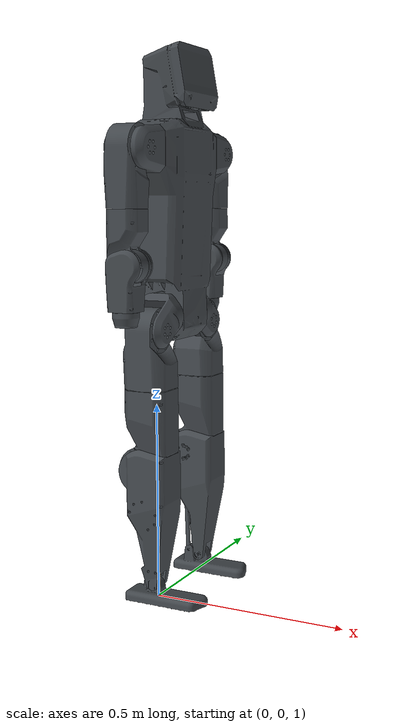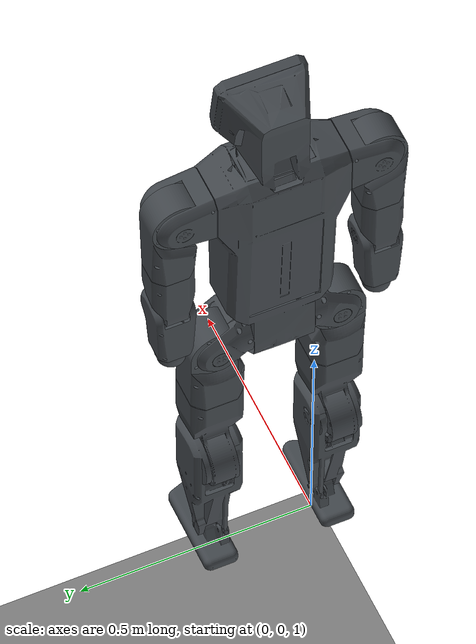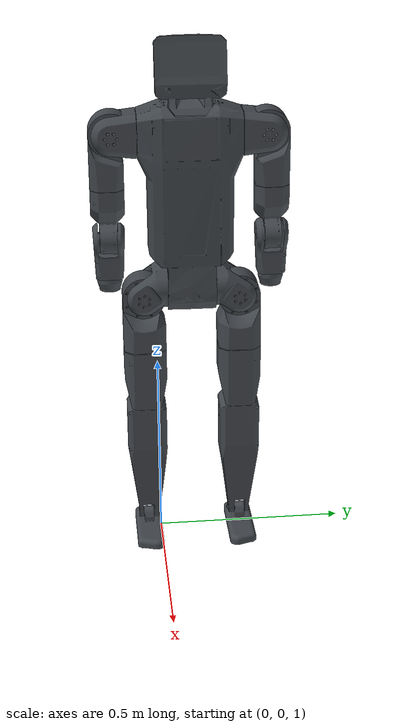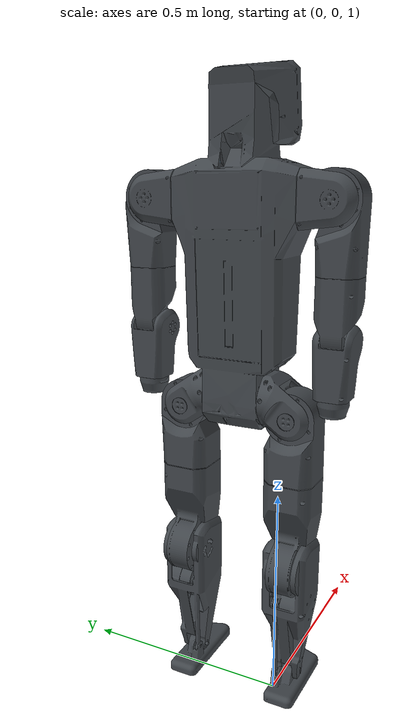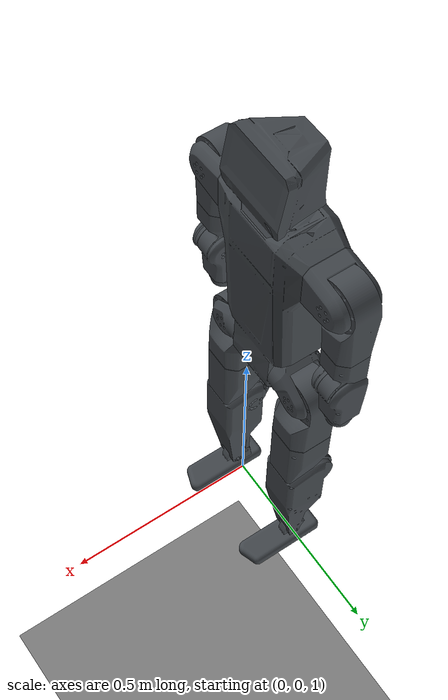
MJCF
<mujoco model="kbotv2p0_nohands">
  <default>
    <default class="robot">
      <default class="motor_00">
        <joint armature="0.001" frictionloss="0.1" actuatorfrcrange="-14.0 14.0" />
        <position ctrlrange="-14.0 14.0" kp="20.0" dampratio="1.0" />
      </default>
      <default class="motor_02">
        <joint armature="0.0042" frictionloss="0.1" actuatorfrcrange="-17.0 17.0" />
        <position ctrlrange="-17.0 17.0" kp="40.0" dampratio="1.0" />
      </default>
      <default class="motor_03">
        <joint armature="0.02" frictionloss="0.2" actuatorfrcrange="-60.0 60.0" />
        <position ctrlrange="-60.0 60.0" kp="200.0" dampratio="1.0" />
      </default>
      <default class="motor_04">
        <joint armature="0.04" frictionloss="0.2" actuatorfrcrange="-120.0 120.0" />
        <position ctrlrange="-120.0 120.0" kp="150.0" dampratio="1.0" />
      </default>
      <default class="visual">
        <geom material="visualgeom" contype="0" conaffinity="0" group="2" />
      </default>
      <default class="collision">
        <geom condim="6" contype="0" conaffinity="1" group="3" solref="0.005 1" friction="0.8 0.02 0.01" />
        <equality solimp="0.99 0.999 1e-05" solref="0.005 1" />
      </default>
    </default>
    <mesh maxhullvert="64" />
  </default>

  <compiler angle="radian" />

  <asset>
    <material name="floating_base_link_material" rgba="1 0 0 1" />
    <material name="Torso_Side_Right_material" rgba="0.262745 0.282353 0.301961 1" />
    <material name="imu_material" rgba="0.615686 0.811765 0.929412 1" />
    <material name="default_material" rgba="0.7 0.7 0.7 1" />
    <material name="floor_material" rgba="0.5 0.5 0.5 1" />
    <mesh name="Torso_Side_Right.collision.stl" file="meshes/Torso_Side_Right.collision.stl" />
    <mesh name="Torso_Side_Right.stl" file="meshes/Torso_Side_Right.stl" />
    <mesh name="KC_C_104R_PitchHardstopDriven.collision.stl" file="meshes/KC_C_104R_PitchHardstopDriven.collision.stl" />
    <mesh name="KC_C_104R_PitchHardstopDriven.stl" file="meshes/KC_C_104R_PitchHardstopDriven.stl" />
    <mesh name="RS03_3.collision.stl" file="meshes/RS03_3.collision.stl" />
    <mesh name="RS03_3.stl" file="meshes/RS03_3.stl" />
    <mesh name="KC_C_202R.collision.stl" file="meshes/KC_C_202R.collision.stl" />
    <mesh name="KC_C_202R.stl" file="meshes/KC_C_202R.stl" />
    <mesh name="KC_C_401R_R_UpForearmDrive.collision.stl" file="meshes/KC_C_401R_R_UpForearmDrive.collision.stl" />
    <mesh name="KC_C_401R_R_UpForearmDrive.stl" file="meshes/KC_C_401R_R_UpForearmDrive.stl" />
    <mesh name="KB_C_501X_Right_Bayonet_Adapter_Hard_Stop.collision.stl" file="meshes/KB_C_501X_Right_Bayonet_Adapter_Hard_Stop.collision.stl" />
    <mesh name="KB_C_501X_Right_Bayonet_Adapter_Hard_Stop.stl" file="meshes/KB_C_501X_Right_Bayonet_Adapter_Hard_Stop.stl" />
    <mesh name="imu.collision.stl" file="meshes/imu.collision.stl" />
    <mesh name="imu.stl" file="meshes/imu.stl" />
    <mesh name="KC_C_104L_PitchHardstopDriven.collision.stl" file="meshes/KC_C_104L_PitchHardstopDriven.collision.stl" />
    <mesh name="KC_C_104L_PitchHardstopDriven.stl" file="meshes/KC_C_104L_PitchHardstopDriven.stl" />
    <mesh name="RS03_6.collision.stl" file="meshes/RS03_6.collision.stl" />
    <mesh name="RS03_6.stl" file="meshes/RS03_6.stl" />
    <mesh name="KC_C_202L.collision.stl" file="meshes/KC_C_202L.collision.stl" />
    <mesh name="KC_C_202L.stl" file="meshes/KC_C_202L.stl" />
    <mesh name="KC_C_401L_L_UpForearmDrive.collision.stl" file="meshes/KC_C_401L_L_UpForearmDrive.collision.stl" />
    <mesh name="KC_C_401L_L_UpForearmDrive.stl" file="meshes/KC_C_401L_L_UpForearmDrive.stl" />
    <mesh name="KB_C_501X_Left_Bayonet_Adapter_Hard_Stop.collision.stl" file="meshes/KB_C_501X_Left_Bayonet_Adapter_Hard_Stop.collision.stl" />
    <mesh name="KB_C_501X_Left_Bayonet_Adapter_Hard_Stop.stl" file="meshes/KB_C_501X_Left_Bayonet_Adapter_Hard_Stop.stl" />
    <mesh name="KC_D_102R_R_Hip_Yoke_Drive.collision.stl" file="meshes/KC_D_102R_R_Hip_Yoke_Drive.collision.stl" />
    <mesh name="KC_D_102R_R_Hip_Yoke_Drive.stl" file="meshes/KC_D_102R_R_Hip_Yoke_Drive.stl" />
    <mesh name="RS03_4.collision.stl" file="meshes/RS03_4.collision.stl" />
    <mesh name="RS03_4.stl" file="meshes/RS03_4.stl" />
    <mesh name="KC_D_301R_R_Femur_Lower_Drive.collision.stl" file="meshes/KC_D_301R_R_Femur_Lower_Drive.collision.stl" />
    <mesh name="KC_D_301R_R_Femur_Lower_Drive.stl" file="meshes/KC_D_301R_R_Femur_Lower_Drive.stl" />
    <mesh name="KC_D_401R_R_Shin_Drive.collision.stl" file="meshes/KC_D_401R_R_Shin_Drive.collision.stl" />
    <mesh name="KC_D_401R_R_Shin_Drive.stl" file="meshes/KC_D_401R_R_Shin_Drive.stl" />
    <mesh name="KB_D_501R_R_LEG_FOOT.collision.stl" file="meshes/KB_D_501R_R_LEG_FOOT.collision.stl" />
    <mesh name="KB_D_501R_R_LEG_FOOT.stl" file="meshes/KB_D_501R_R_LEG_FOOT.stl" />
    <mesh name="KC_D_102L_L_Hip_Yoke_Drive.collision.stl" file="meshes/KC_D_102L_L_Hip_Yoke_Drive.collision.stl" />
    <mesh name="KC_D_102L_L_Hip_Yoke_Drive.stl" file="meshes/KC_D_102L_L_Hip_Yoke_Drive.stl" />
    <mesh name="RS03_5.collision.stl" file="meshes/RS03_5.collision.stl" />
    <mesh name="RS03_5.stl" file="meshes/RS03_5.stl" />
    <mesh name="KC_D_301L_L_Femur_Lower_Drive.collision.stl" file="meshes/KC_D_301L_L_Femur_Lower_Drive.collision.stl" />
    <mesh name="KC_D_301L_L_Femur_Lower_Drive.stl" file="meshes/KC_D_301L_L_Femur_Lower_Drive.stl" />
    <mesh name="KC_D_401L_L_Shin_Drive.collision.stl" file="meshes/KC_D_401L_L_Shin_Drive.collision.stl" />
    <mesh name="KC_D_401L_L_Shin_Drive.stl" file="meshes/KC_D_401L_L_Shin_Drive.stl" />
    <mesh name="KB_D_501L_L_LEG_FOOT.collision.stl" file="meshes/KB_D_501L_L_LEG_FOOT.collision.stl" />
    <mesh name="KB_D_501L_L_LEG_FOOT.stl" file="meshes/KB_D_501L_L_LEG_FOOT.stl" />
  </asset>

  <worldbody>
    <geom name="floor" type="plane" size="10 10 0.1" pos="0 0 0" rgba="0.5 0.5 0.5 1" material="floor_material" />

    <light name="overhead_light" pos="0 0 5" dir="0 0 -1" directional="true" diffuse="0.8 0.8 0.8" specular="0.2 0.2 0.2" />
    <light name="front_light" pos="2 2 2" dir="-0.5 -0.5 -0.7" directional="false" diffuse="0.5 0.5 0.5" specular="0.3 0.3 0.3" />
    <light name="back_light" pos="-2 -2 2" dir="0.5 0.5 -0.7" directional="false" diffuse="0.3 0.3 0.3" specular="0.1 0.1 0.1" />

    <body name="floating_base_link" pos="0.00000000 0.00000000 2.00947904" quat="1 0 0 0" childclass="robot">
      <geom name="floating_base_link_visual" pos="0 0 0" quat="0.7073882691671998 0.0 0.0 0.706825181105366" material="floating_base_link_material" type="sphere" size="0.01" class="visual" />
      <body name="Torso_Side_Right" pos="0 0 0" quat="0.7073882691671998 0.0 0.0 0.706825181105366">
        <inertial pos="0.093172 -0.000957 -0.063239" quat="1.0 0.0 0.0 0.0" mass="13.516427" diaginertia="0.486657 0.51314 0.059226" />
        <geom name="Torso_Side_Right_collision" pos="0 0 0" quat="1.0 0.0 0.0 0.0" type="mesh" mesh="Torso_Side_Right.collision.stl" class="collision" />
        <geom name="Torso_Side_Right_visual" pos="0 0 0" quat="1.0 0.0 0.0 0.0" material="Torso_Side_Right_material" type="mesh" mesh="Torso_Side_Right.stl" class="visual" />
        <body name="KC_C_104R_PitchHardstopDriven" pos="-0.028031 0.000007 0.126021" quat="0.5000001633974483 0.4999999999999733 0.49999983660255165 0.4999999999999733">
          <joint name="dof_right_shoulder_pitch_03" type="hinge" ref="0.0" class="motor_03" range="-2.617994 2.094395" axis="0 0 1" />
          <inertial pos="-0.004584 0.002745 -0.051222" quat="1.0 0.0 0.0 0.0" mass="0.584848" diaginertia="0.001182 0.001537 0.001416" />
          <geom name="KC_C_104R_PitchHardstopDriven_collision" pos="0 0 0" quat="1.0 0.0 0.0 0.0" type="mesh" mesh="KC_C_104R_PitchHardstopDriven.collision.stl" class="collision" />
          <geom name="KC_C_104R_PitchHardstopDriven_visual" pos="0 0 0" quat="1.0 0.0 0.0 0.0" material="Torso_Side_Right_material" type="mesh" mesh="KC_C_104R_PitchHardstopDriven.stl" class="visual" />
          <body name="RS03_3" pos="-0.024250 0 -0.080000" quat="-1.2247452309842457e-07 -0.7071068967259713 1.22474483074382e-07 -0.7071066656470838">
            <joint name="dof_right_shoulder_roll_03" type="hinge" ref="0.0" class="motor_03" range="-1.658063 0.383972" axis="0 0 -1" />
            <inertial pos="-0.004944 0.042532 0.027432" quat="1.0 0.0 0.0 0.0" mass="1.676509" diaginertia="0.006831 0.001755 0.007324" />
            <geom name="RS03_3_collision" pos="0 0 0" quat="1.0 0.0 0.0 0.0" type="mesh" mesh="RS03_3.collision.stl" class="collision" />
            <geom name="RS03_3_visual" pos="0 0 0" quat="1.0 0.0 0.0 0.0" material="Torso_Side_Right_material" type="mesh" mesh="RS03_3.stl" class="visual" />
            <body name="KC_C_202R" pos="-0.013000 0.142000 0.030250" quat="0.7071068967259818 0.7071066656470943 0.0 0.0">
              <joint name="dof_right_shoulder_yaw_02" type="hinge" ref="0.0" class="motor_02" range="-1.658063 1.658063" axis="0 0 1" />
              <inertial pos="0.003910 -0.004160 -0.101316" quat="1.0 0.0 0.0 0.0" mass="0.743508" diaginertia="0.00241 0.002208 0.000693" />
              <geom name="KC_C_202R_collision" pos="0 0 0" quat="1.0 0.0 0.0 0.0" type="mesh" mesh="KC_C_202R.collision.stl" class="collision" />
              <geom name="KC_C_202R_visual" pos="0 0 0" quat="1.0 0.0 0.0 0.0" material="Torso_Side_Right_material" type="mesh" mesh="KC_C_202R.stl" class="visual" />
              <body name="KC_C_401R_R_UpForearmDrive" pos="0.018500 -0.010000 -0.137000" quat="0.7071068967259818 0.0 0.7071066656470943 0.0">
                <joint name="dof_right_elbow_02" type="hinge" ref="0.0" class="motor_02" range="0 2.478368" axis="0 0 -1" />
                <inertial pos="0.061999 0.015867 -0.012446" quat="1.0 0.0 0.0 0.0" mass="0.585204" diaginertia="0.000522 0.001021 0.00102" />
                <geom name="KC_C_401R_R_UpForearmDrive_collision" pos="0 0 0" quat="1.0 0.0 0.0 0.0" type="mesh" mesh="KC_C_401R_R_UpForearmDrive.collision.stl" class="collision" />
                <geom name="KC_C_401R_R_UpForearmDrive_visual" pos="0 0 0" quat="1.0 0.0 0.0 0.0" material="Torso_Side_Right_material" type="mesh" mesh="KC_C_401R_R_UpForearmDrive.stl" class="visual" />
                <body name="KB_C_501X_Right_Bayonet_Adapter_Hard_Stop" pos="0.103000 0.017350 -0.018000" quat="0.7071068967259818 0.0 -0.7071066656470943 0.0">
                  <joint name="dof_right_wrist_00" type="hinge" ref="0.0" class="motor_00" range="-1.745329 1.745329" axis="0 0 1" />
                  <inertial pos="0.004187 0.000068 -0.019905" quat="1.0 0.0 0.0 0.0" mass="0.152198" diaginertia="6.1e-05 6.1e-05 8.4e-05" />
                  <geom name="KB_C_501X_Right_Bayonet_Adapter_Hard_Stop_collision" pos="0 0 0" quat="1.0 0.0 0.0 0.0" type="mesh" mesh="KB_C_501X_Right_Bayonet_Adapter_Hard_Stop.collision.stl" class="collision" />
                  <geom name="KB_C_501X_Right_Bayonet_Adapter_Hard_Stop_visual" pos="0 0 0" quat="1.0 0.0 0.0 0.0" material="Torso_Side_Right_material" type="mesh" mesh="KB_C_501X_Right_Bayonet_Adapter_Hard_Stop.stl" class="visual" />
                </body>
              </body>
            </body>
          </body>
        </body>
        <body name="imu" pos="0.121783 0.043292 0.231518" quat="0.7071067715114185 8.22589334037449e-07 0.7071067908607194 8.22589334037449e-07">
          <inertial pos="0.014737 -0.012000 0.003000" quat="1.0 0.0 0.0 0.0" mass="0.005700" diaginertia="1e-06 1e-06 2e-06" />
          <geom name="imu_collision" pos="0 0 0" quat="1.0 0.0 0.0 0.0" type="mesh" mesh="imu.collision.stl" class="collision" />
          <geom name="imu_visual" pos="0 0 0" quat="1.0 0.0 0.0 0.0" material="imu_material" type="mesh" mesh="imu.stl" class="visual" />
          <site name="imu_site" quat="1.0 0.0 0.0 0.0" pos="0.0 0.0 0.0" />
        </body>
        <body name="KC_C_104L_PitchHardstopDriven" pos="0.213969 0.000007 0.126021" quat="0.5000001633974483 -0.4999999999999733 -0.49999983660255165 0.4999999999999733">
          <joint name="dof_left_shoulder_pitch_03" type="hinge" ref="0.0" class="motor_03" range="-1.047198 3.490658" axis="0 0 1" />
          <inertial pos="-0.004595 -0.002745 -0.051222" quat="1.0 0.0 0.0 0.0" mass="0.584843" diaginertia="0.001182 0.001536 0.001415" />
          <geom name="KC_C_104L_PitchHardstopDriven_collision" pos="0 0 0" quat="1.0 0.0 0.0 0.0" type="mesh" mesh="KC_C_104L_PitchHardstopDriven.collision.stl" class="collision" />
          <geom name="KC_C_104L_PitchHardstopDriven_visual" pos="0 0 0" quat="1.0 0.0 0.0 0.0" material="Torso_Side_Right_material" type="mesh" mesh="KC_C_104L_PitchHardstopDriven.stl" class="visual" />
          <body name="RS03_6" pos="-0.024250 0 -0.080000" quat="-1.2247452309842457e-07 -0.7071068967259713 -1.22474483074382e-07 0.7071066656470838">
            <joint name="dof_left_shoulder_roll_03" type="hinge" ref="0.0" class="motor_03" range="-0.383972 1.658063" axis="0 0 1" />
            <inertial pos="0.004944 -0.042531 -0.027433" quat="1.0 0.0 0.0 0.0" mass="1.676479" diaginertia="0.00683 0.001755 0.007324" />
            <geom name="RS03_6_collision" pos="0 0 0" quat="1.0 0.0 0.0 0.0" type="mesh" mesh="RS03_6.collision.stl" class="collision" />
            <geom name="RS03_6_visual" pos="0 0 0" quat="1.0 0.0 0.0 0.0" material="Torso_Side_Right_material" type="mesh" mesh="RS03_6.stl" class="visual" />
            <body name="KC_C_202L" pos="0.013000 -0.142000 -0.030250" quat="0.7071068967259818 0.7071066656470943 0.0 0.0">
              <joint name="dof_left_shoulder_yaw_02" type="hinge" ref="0.0" class="motor_02" range="-1.658063 1.658063" axis="0 0 -1" />
              <inertial pos="0.000925 0.006010 0.113327" quat="1.0 0.0 0.0 0.0" mass="0.579259" diaginertia="0.001537 0.001383 0.000471" />
              <geom name="KC_C_202L_collision" pos="0 0 0" quat="1.0 0.0 0.0 0.0" type="mesh" mesh="KC_C_202L.collision.stl" class="collision" />
              <geom name="KC_C_202L_visual" pos="0 0 0" quat="1.0 0.0 0.0 0.0" material="Torso_Side_Right_material" type="mesh" mesh="KC_C_202L.stl" class="visual" />
              <body name="KC_C_401L_L_UpForearmDrive" pos="-0.018500 0.010000 0.137000" quat="-1.2247452309842457e-07 -0.7071068967259713 -1.22474483074382e-07 0.7071066656470838">
                <joint name="dof_left_elbow_02" type="hinge" ref="0.0" class="motor_02" range="-2.478368 0" axis="0 0 -1" />
                <inertial pos="-0.061998 0.015867 -0.012446" quat="1.0 0.0 0.0 0.0" mass="0.585219" diaginertia="0.000522 0.001021 0.00102" />
                <geom name="KC_C_401L_L_UpForearmDrive_collision" pos="0 0 0" quat="1.0 0.0 0.0 0.0" type="mesh" mesh="KC_C_401L_L_UpForearmDrive.collision.stl" class="collision" />
                <geom name="KC_C_401L_L_UpForearmDrive_visual" pos="0 0 0" quat="1.0 0.0 0.0 0.0" material="Torso_Side_Right_material" type="mesh" mesh="KC_C_401L_L_UpForearmDrive.stl" class="visual" />
                <body name="KB_C_501X_Left_Bayonet_Adapter_Hard_Stop" pos="-0.103000 0.017350 -0.018000" quat="-1.2247452309842457e-07 -0.7071068967259713 -1.22474483074382e-07 0.7071066656470838">
                  <joint name="dof_left_wrist_00" type="hinge" ref="0.0" class="motor_00" range="-1.745329 1.745329" axis="0 0 -1" />
                  <inertial pos="-0.004187 -0.000068 0.019905" quat="1.0 0.0 0.0 0.0" mass="0.152198" diaginertia="6.1e-05 6.1e-05 8.4e-05" />
                  <geom name="KB_C_501X_Left_Bayonet_Adapter_Hard_Stop_collision" pos="0 0 0" quat="1.0 0.0 0.0 0.0" type="mesh" mesh="KB_C_501X_Left_Bayonet_Adapter_Hard_Stop.collision.stl" class="collision" />
                  <geom name="KB_C_501X_Left_Bayonet_Adapter_Hard_Stop_visual" pos="0 0 0" quat="1.0 0.0 0.0 0.0" material="Torso_Side_Right_material" type="mesh" mesh="KB_C_501X_Left_Bayonet_Adapter_Hard_Stop.stl" class="visual" />
                </body>
              </body>
            </body>
          </body>
        </body>
        <body name="KC_D_102R_R_Hip_Yoke_Drive" pos="0.037469 0.000007 -0.284479" quat="0.5000001633974483 0.4999999999999733 0.49999983660255165 0.4999999999999733">
          <joint name="dof_right_hip_pitch_04" type="hinge" ref="0.0" class="motor_04" range="-2.216568 1.047198" axis="0 0 1" />
          <inertial pos="-0.005644 -0.004227 -0.038197" quat="1.0 0.0 0.0 0.0" mass="0.530428" diaginertia="0.00088 0.001182 0.001271" />
          <geom name="KC_D_102R_R_Hip_Yoke_Drive_collision" pos="0 0 0" quat="1.0 0.0 0.0 0.0" type="mesh" mesh="KC_D_102R_R_Hip_Yoke_Drive.collision.stl" class="collision" />
          <geom name="KC_D_102R_R_Hip_Yoke_Drive_visual" pos="0 0 0" quat="1.0 0.0 0.0 0.0" material="Torso_Side_Right_material" type="mesh" mesh="KC_D_102R_R_Hip_Yoke_Drive.stl" class="visual" />
          <body name="RS03_4" pos="-0.028250 -0.030000 -0.071000" quat="-1.2247452309842457e-07 0.7071068967259713 1.22474483074382e-07 0.7071066656470838">
            <joint name="dof_right_hip_roll_03" type="hinge" ref="0.0" class="motor_03" range="-2.268928 0.209440" axis="0 0 -1" />
            <inertial pos="-0.000249 0.058017 0.025580" quat="1.0 0.0 0.0 0.0" mass="2.373184" diaginertia="0.010217 0.003255 0.010667" />
            <geom name="RS03_4_collision" pos="0 0 0" quat="1.0 0.0 0.0 0.0" type="mesh" mesh="RS03_4.collision.stl" class="collision" />
            <geom name="RS03_4_visual" pos="0 0 0" quat="1.0 0.0 0.0 0.0" material="Torso_Side_Right_material" type="mesh" mesh="RS03_4.stl" class="visual" />
            <body name="KC_D_301R_R_Femur_Lower_Drive" pos="0 0.143000 0.024250" quat="0.7071068967259818 -0.7071066656470943 0.0 0.0">
              <joint name="dof_right_hip_yaw_03" type="hinge" ref="0.0" class="motor_03" range="-1.570796 1.570796" axis="0 0 -1" />
              <inertial pos="-0.001014 -0.013387 0.171456" quat="1.0 0.0 0.0 0.0" mass="2.343635" diaginertia="0.015645 0.014172 0.004016" />
              <geom name="KC_D_301R_R_Femur_Lower_Drive_collision" pos="0 0 0" quat="1.0 0.0 0.0 0.0" type="mesh" mesh="KC_D_301R_R_Femur_Lower_Drive.collision.stl" class="collision" />
              <geom name="KC_D_301R_R_Femur_Lower_Drive_visual" pos="0 0 0" quat="1.0 0.0 0.0 0.0" material="Torso_Side_Right_material" type="mesh" mesh="KC_D_301R_R_Femur_Lower_Drive.stl" class="visual" />
              <body name="KC_D_401R_R_Shin_Drive" pos="0.020500 -0.021000 0.212000" quat="0.5000001633974483 0.4999999999999733 -0.49999983660255165 -0.4999999999999733">
                <joint name="dof_right_knee_04" type="hinge" ref="0.0" class="motor_04" range="-2.705260 0" axis="0 0 1" />
                <inertial pos="-0.024549 0.104152 0.018182" quat="1.0 0.0 0.0 0.0" mass="1.670592" diaginertia="0.014672 0.002924 0.014592" />
                <geom name="KC_D_401R_R_Shin_Drive_collision" pos="0 0 0" quat="1.0 0.0 0.0 0.0" type="mesh" mesh="KC_D_401R_R_Shin_Drive.collision.stl" class="collision" />
                <geom name="KC_D_401R_R_Shin_Drive_visual" pos="0 0 0" quat="1.0 0.0 0.0 0.0" material="Torso_Side_Right_material" type="mesh" mesh="KC_D_401R_R_Shin_Drive.stl" class="visual" />
                <body name="KB_D_501R_R_LEG_FOOT" pos="-0.030000 0.290000 0.035100" quat="1.0 0.0 0.0 0.0">
                  <joint name="dof_right_ankle_02" type="hinge" ref="0.0" class="motor_02" range="-0.226893 1.256637" axis="0 0 1" />
                  <inertial pos="-0.014842 0.027139 -0.016105" quat="1.0 0.0 0.0 0.0" mass="0.483858" diaginertia="0.000268 0.001549 0.001458" />
                  <geom name="KB_D_501R_R_LEG_FOOT_collision" pos="0 0 0" quat="1.0 0.0 0.0 0.0" type="mesh" mesh="KB_D_501R_R_LEG_FOOT.collision.stl" class="collision" />
                  <geom name="KB_D_501R_R_LEG_FOOT_visual" pos="0 0 0" quat="1.0 0.0 0.0 0.0" material="Torso_Side_Right_material" type="mesh" mesh="KB_D_501R_R_LEG_FOOT.stl" class="visual" />
                  <site name="right_foot" />
                </body>
              </body>
            </body>
          </body>
        </body>
        <body name="KC_D_102L_L_Hip_Yoke_Drive" pos="0.147969 0.000007 -0.284479" quat="0.5000001633974483 -0.4999999999999733 -0.49999983660255165 0.4999999999999733">
          <joint name="dof_left_hip_pitch_04" type="hinge" ref="0.0" class="motor_04" range="-1.047198 2.216568" axis="0 0 1" />
          <inertial pos="-0.005644 0.004227 -0.038197" quat="1.0 0.0 0.0 0.0" mass="0.530424" diaginertia="0.00088 0.001182 0.001271" />
          <geom name="KC_D_102L_L_Hip_Yoke_Drive_collision" pos="0 0 0" quat="1.0 0.0 0.0 0.0" type="mesh" mesh="KC_D_102L_L_Hip_Yoke_Drive.collision.stl" class="collision" />
          <geom name="KC_D_102L_L_Hip_Yoke_Drive_visual" pos="0 0 0" quat="1.0 0.0 0.0 0.0" material="Torso_Side_Right_material" type="mesh" mesh="KC_D_102L_L_Hip_Yoke_Drive.stl" class="visual" />
          <body name="RS03_5" pos="-0.028250 0.030000 -0.071000" quat="0.7071068967259818 0.0 0.7071066656470943 0.0">
            <joint name="dof_left_hip_roll_03" type="hinge" ref="0.0" class="motor_03" range="-0.209440 2.268928" axis="0 0 -1" />
            <inertial pos="0.000249 0.058017 0.025578" quat="1.0 0.0 0.0 0.0" mass="2.373239" diaginertia="0.010217 0.003255 0.010667" />
            <geom name="RS03_5_collision" pos="0 0 0" quat="1.0 0.0 0.0 0.0" type="mesh" mesh="RS03_5.collision.stl" class="collision" />
            <geom name="RS03_5_visual" pos="0 0 0" quat="1.0 0.0 0.0 0.0" material="Torso_Side_Right_material" type="mesh" mesh="RS03_5.stl" class="visual" />
            <body name="KC_D_301L_L_Femur_Lower_Drive" pos="0 0.143000 0.024250" quat="0.7071068967259818 -0.7071066656470943 0.0 0.0">
              <joint name="dof_left_hip_yaw_03" type="hinge" ref="0.0" class="motor_03" range="-1.570796 1.570796" axis="0 0 -1" />
              <inertial pos="0.001013 -0.013386 0.171458" quat="1.0 0.0 0.0 0.0" mass="2.343629" diaginertia="0.015644 0.014172 0.004016" />
              <geom name="KC_D_301L_L_Femur_Lower_Drive_collision" pos="0 0 0" quat="1.0 0.0 0.0 0.0" type="mesh" mesh="KC_D_301L_L_Femur_Lower_Drive.collision.stl" class="collision" />
              <geom name="KC_D_301L_L_Femur_Lower_Drive_visual" pos="0 0 0" quat="1.0 0.0 0.0 0.0" material="Torso_Side_Right_material" type="mesh" mesh="KC_D_301L_L_Femur_Lower_Drive.stl" class="visual" />
              <body name="KC_D_401L_L_Shin_Drive" pos="-0.020500 -0.021000 0.212000" quat="0.5000001633974483 -0.4999999999999733 0.49999983660255165 -0.4999999999999733">
                <joint name="dof_left_knee_04" type="hinge" ref="0.0" class="motor_04" range="0 2.705260" axis="0 0 1" />
                <inertial pos="-0.024550 -0.104154 0.018183" quat="1.0 0.0 0.0 0.0" mass="1.670535" diaginertia="0.014672 0.002924 0.014592" />
                <geom name="KC_D_401L_L_Shin_Drive_collision" pos="0 0 0" quat="1.0 0.0 0.0 0.0" type="mesh" mesh="KC_D_401L_L_Shin_Drive.collision.stl" class="collision" />
                <geom name="KC_D_401L_L_Shin_Drive_visual" pos="0 0 0" quat="1.0 0.0 0.0 0.0" material="Torso_Side_Right_material" type="mesh" mesh="KC_D_401L_L_Shin_Drive.stl" class="visual" />
                <body name="KB_D_501L_L_LEG_FOOT" pos="-0.030000 -0.290000 0.035100" quat="-1.7320510330969933e-07 -0.999999999999985 -0.0 0.0">
                  <joint name="dof_left_ankle_02" type="hinge" ref="0.0" class="motor_02" range="-1.256637 0.226893" axis="0 0 -1" />
                  <inertial pos="-0.014842 0.027139 0.016105" quat="1.0 0.0 0.0 0.0" mass="0.483858" diaginertia="0.000268 0.001549 0.001458" />
                  <geom name="KB_D_501L_L_LEG_FOOT_collision" pos="0 0 0" quat="1.0 0.0 0.0 0.0" type="mesh" mesh="KB_D_501L_L_LEG_FOOT.collision.stl" class="collision" />
                  <geom name="KB_D_501L_L_LEG_FOOT_visual" pos="0 0 0" quat="1.0 0.0 0.0 0.0" material="Torso_Side_Right_material" type="mesh" mesh="KB_D_501L_L_LEG_FOOT.stl" class="visual" />
                  <site name="left_foot" />
                </body>
              </body>
            </body>
          </body>
        </body>
      </body>
      <site name="floating_base_link_site" pos="0 0 0" quat="1 0 0 0" />
      <camera name="front_camera" mode="track" fovy="90.0" quat="4.329780281177467e-17 4.329780281177466e-17 0.7071067811865475 0.7071067811865476" pos="0.0 2.0 0.5" />
      <camera name="side_camera" mode="track" fovy="90.0" quat="-0.5 -0.4999999999999999 0.5 0.5000000000000001" pos="-2.0 0.0 0.5" />
    </body>
  </worldbody>

  <actuator>
    <position name="dof_right_shoulder_pitch_03_ctrl" joint="dof_right_shoulder_pitch_03" class="motor_03" />
    <position name="dof_right_shoulder_roll_03_ctrl" joint="dof_right_shoulder_roll_03" class="motor_03" />
    <position name="dof_right_shoulder_yaw_02_ctrl" joint="dof_right_shoulder_yaw_02" class="motor_02" />
    <position name="dof_right_elbow_02_ctrl" joint="dof_right_elbow_02" class="motor_02" />
    <position name="dof_right_wrist_00_ctrl" joint="dof_right_wrist_00" class="motor_00" />
    <position name="dof_left_shoulder_pitch_03_ctrl" joint="dof_left_shoulder_pitch_03" class="motor_03" />
    <position name="dof_left_shoulder_roll_03_ctrl" joint="dof_left_shoulder_roll_03" class="motor_03" />
    <position name="dof_left_shoulder_yaw_02_ctrl" joint="dof_left_shoulder_yaw_02" class="motor_02" />
    <position name="dof_left_elbow_02_ctrl" joint="dof_left_elbow_02" class="motor_02" />
    <position name="dof_left_wrist_00_ctrl" joint="dof_left_wrist_00" class="motor_00" />
    <position name="dof_right_hip_pitch_04_ctrl" joint="dof_right_hip_pitch_04" class="motor_04" kp="300.0" />
    <position name="dof_right_hip_roll_03_ctrl" joint="dof_right_hip_roll_03" class="motor_03" kp="300.0" />
    <position name="dof_right_hip_yaw_03_ctrl" joint="dof_right_hip_yaw_03" class="motor_03" kp="300.0" />
    <position name="dof_right_knee_04_ctrl" joint="dof_right_knee_04" class="motor_04" kp="300.0" />
    <position name="dof_right_ankle_02_ctrl" joint="dof_right_ankle_02" class="motor_02" kp="4.0" />
    <position name="dof_left_hip_pitch_04_ctrl" joint="dof_left_hip_pitch_04" class="motor_04" />
    <position name="dof_left_hip_roll_03_ctrl" joint="dof_left_hip_roll_03" class="motor_03" />
    <position name="dof_left_hip_yaw_03_ctrl" joint="dof_left_hip_yaw_03" class="motor_03" />
    <position name="dof_left_knee_04_ctrl" joint="dof_left_knee_04" class="motor_04" />
    <position name="dof_left_ankle_02_ctrl" joint="dof_left_ankle_02" class="motor_02" />
  </actuator>

  <contact>
    <exclude body1="Torso_Side_Right" body2="KC_C_104R_PitchHardstopDriven" />
    <exclude body1="Torso_Side_Right" body2="imu" />
    <exclude body1="Torso_Side_Right" body2="KC_C_104L_PitchHardstopDriven" />
    <exclude body1="Torso_Side_Right" body2="KC_D_102R_R_Hip_Yoke_Drive" />
    <exclude body1="Torso_Side_Right" body2="KC_D_102L_L_Hip_Yoke_Drive" />
    <exclude body1="KC_C_104R_PitchHardstopDriven" body2="RS03_3" />
    <exclude body1="KC_D_102R_R_Hip_Yoke_Drive" body2="RS03_4" />
    <exclude body1="KC_D_102L_L_Hip_Yoke_Drive" body2="RS03_5" />
    <exclude body1="KC_C_104L_PitchHardstopDriven" body2="RS03_6" />
    <exclude body1="RS03_3" body2="KC_C_202R" />
    <exclude body1="RS03_6" body2="KC_C_202L" />
    <exclude body1="RS03_4" body2="KC_D_301R_R_Femur_Lower_Drive" />
    <exclude body1="RS03_5" body2="KC_D_301L_L_Femur_Lower_Drive" />
    <exclude body1="KC_C_202R" body2="KC_C_401R_R_UpForearmDrive" />
    <exclude body1="KC_C_202L" body2="KC_C_401L_L_UpForearmDrive" />
    <exclude body1="KC_D_301R_R_Femur_Lower_Drive" body2="KC_D_401R_R_Shin_Drive" />
    <exclude body1="KC_D_301L_L_Femur_Lower_Drive" body2="KC_D_401L_L_Shin_Drive" />
    <exclude body1="KC_C_401R_R_UpForearmDrive" body2="KB_C_501X_Right_Bayonet_Adapter_Hard_Stop" />
    <exclude body1="KC_C_401L_L_UpForearmDrive" body2="KB_C_501X_Left_Bayonet_Adapter_Hard_Stop" />
    <exclude body1="KC_D_401R_R_Shin_Drive" body2="KB_D_501R_R_LEG_FOOT" />
    <exclude body1="KC_D_401L_L_Shin_Drive" body2="KB_D_501L_L_LEG_FOOT" />
  </contact>

  <sensor>
    <accelerometer name="imu_acc" site="imu_site" noise="0.01" />
    <gyro name="imu_gyro" site="imu_site" noise="0.01" />
    <magnetometer name="imu_mag" site="imu_site" noise="0.05" />
    <framepos name="base_link_pos" objtype="site" objname="imu_site" />
    <framequat name="base_link_quat" objtype="site" objname="imu_site" />
    <framelinvel name="base_link_vel" objtype="site" objname="imu_site" />
    <frameangvel name="base_link_ang_vel" objtype="site" objname="imu_site" />
    <force name="left_foot_force" site="left_foot" />
    <force name="right_foot_force" site="right_foot" />
  </sensor>
</mujoco>
